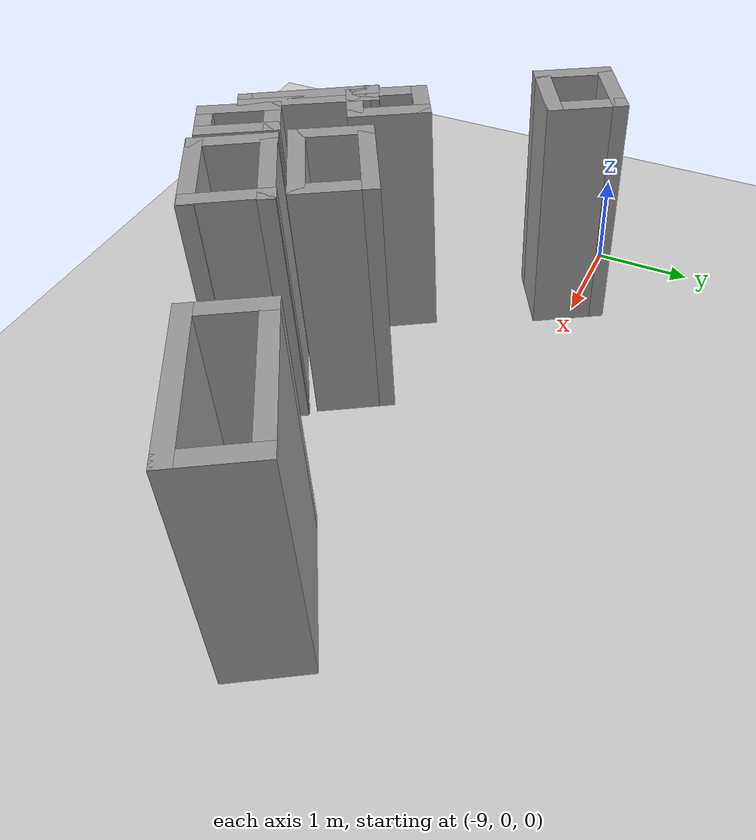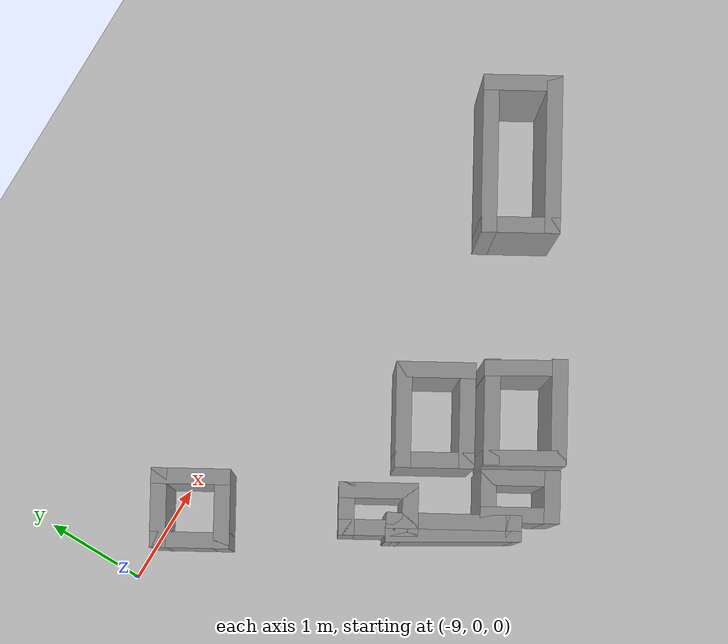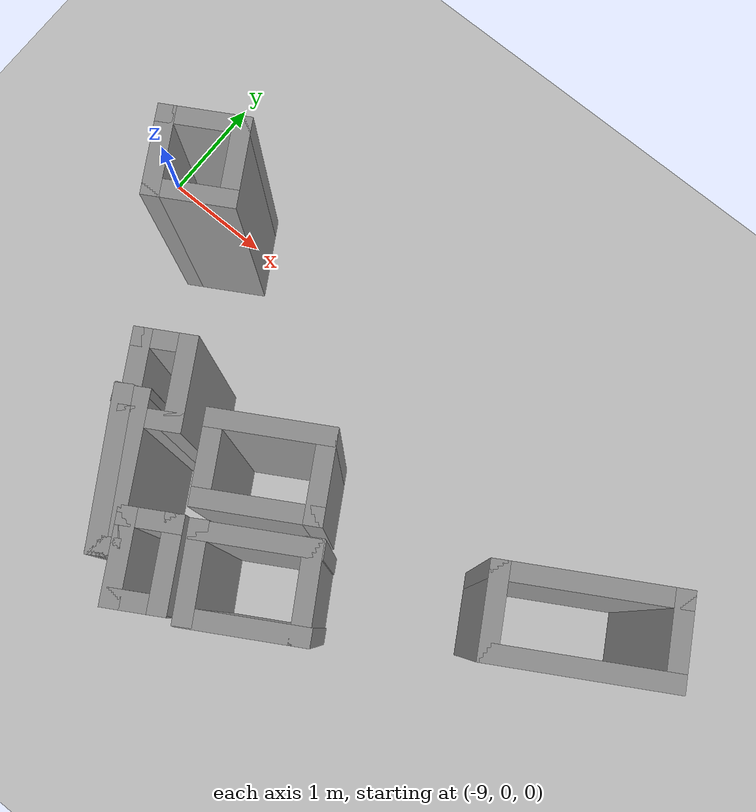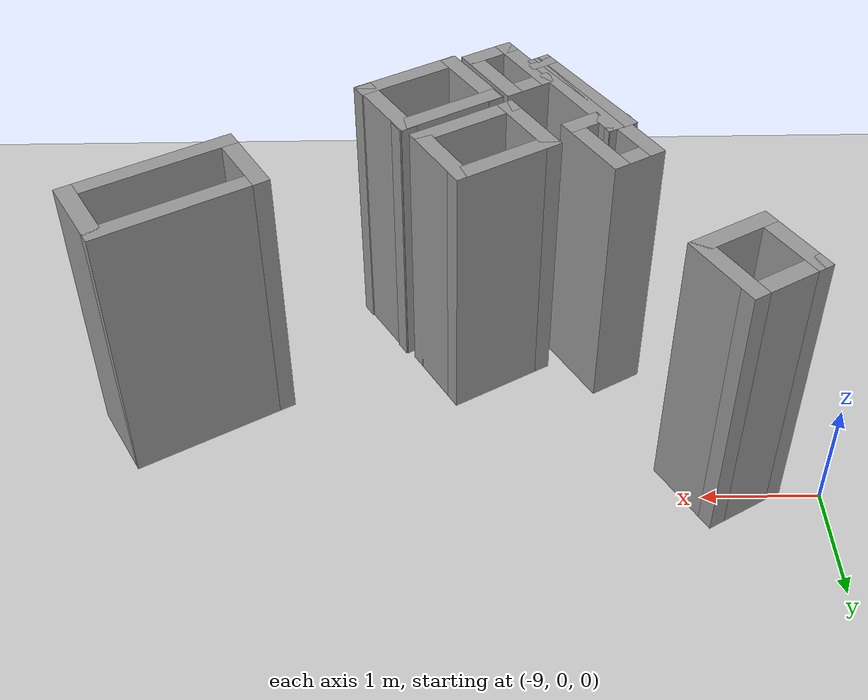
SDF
<sdf version='1.7'>
    <world name='default'>
    <include>
        <uri>model://sun</uri>
    </include>
    <include>
        <uri>model://ground_plane</uri>
    </include>
  <model name='try1'>
    <pose>-4.33347 -1.44575 0 0 -0 0</pose>
    <link name='Wall_17'>
      <collision name='Wall_17_Collision'>
        <geometry>
          <box>
            <size>0.75 0.15 2.5</size>
          </box>
        </geometry>
        <pose>0 0 1.25 0 -0 0</pose>
      </collision>
      <visual name='Wall_17_Visual'>
        <pose>0 0 1.25 0 -0 0</pose>
        <geometry>
          <box>
            <size>0.75 0.15 2.5</size>
          </box>
        </geometry>
        <material>
          <script>
            <uri>file://media/materials/scripts/gazebo.material</uri>
            <name>Gazebo/Grey</name>
          </script>
          <ambient>1 1 1 1</ambient>
        </material>
        <meta>
          <layer>0</layer>
        </meta>
      </visual>
      <pose>-4.08101 1.11796 0 0 -0 -1.0472</pose>
    </link>
    <link name='Wall_18'>
      <collision name='Wall_18_Collision'>
        <geometry>
          <box>
            <size>0.75 0.15 2.5</size>
          </box>
        </geometry>
        <pose>0 0 1.25 0 -0 0</pose>
      </collision>
      <visual name='Wall_18_Visual'>
        <pose>0 0 1.25 0 -0 0</pose>
        <geometry>
          <box>
            <size>0.75 0.15 2.5</size>
          </box>
        </geometry>
        <material>
          <script>
            <uri>file://media/materials/scripts/gazebo.material</uri>
            <name>Gazebo/Grey</name>
          </script>
          <ambient>1 1 1 1</ambient>
        </material>
        <meta>
          <layer>0</layer>
        </meta>
      </visual>
      <pose>-3.67121 1.00815 0 0 -0 0.523599</pose>
    </link>
    <link name='Wall_19'>
      <collision name='Wall_19_Collision'>
        <geometry>
          <box>
            <size>0.75 0.15 2.5</size>
          </box>
        </geometry>
        <pose>0 0 1.25 0 -0 0</pose>
      </collision>
      <visual name='Wall_19_Visual'>
        <pose>0 0 1.25 0 -0 0</pose>
        <geometry>
          <box>
            <size>0.75 0.15 2.5</size>
          </box>
        </geometry>
        <material>
          <script>
            <uri>file://media/materials/scripts/gazebo.material</uri>
            <name>Gazebo/Grey</name>
          </script>
          <ambient>1 1 1 1</ambient>
        </material>
        <meta>
          <layer>0</layer>
        </meta>
      </visual>
      <pose>-3.5614 1.41796 0 0 -0 2.0944</pose>
    </link>
    <link name='Wall_20'>
      <collision name='Wall_20_Collision'>
        <geometry>
          <box>
            <size>0.75 0.15 2.5</size>
          </box>
        </geometry>
        <pose>0 0 1.25 0 -0 0</pose>
      </collision>
      <visual name='Wall_20_Visual'>
        <pose>0 0 1.25 0 -0 0</pose>
        <geometry>
          <box>
            <size>0.75 0.15 2.5</size>
          </box>
        </geometry>
        <material>
          <script>
            <uri>file://media/materials/scripts/gazebo.material</uri>
            <name>Gazebo/Grey</name>
          </script>
          <ambient>1 1 1 1</ambient>
        </material>
        <meta>
          <layer>0</layer>
        </meta>
      </visual>
      <pose>-3.9712 1.52776 0 0 -0 -2.61799</pose>
    </link>
    <link name='Wall_34'>
      <collision name='Wall_34_Collision'>
        <geometry>
          <box>
            <size>1 0.15 2.5</size>
          </box>
        </geometry>
        <pose>0 0 1.25 0 -0 0</pose>
      </collision>
      <visual name='Wall_34_Visual'>
        <pose>0 0 1.25 0 -0 0</pose>
        <geometry>
          <box>
            <size>1 0.15 2.5</size>
          </box>
        </geometry>
        <material>
          <script>
            <uri>file://media/materials/scripts/gazebo.material</uri>
            <name>Gazebo/Grey</name>
          </script>
          <ambient>1 1 1 1</ambient>
        </material>
        <meta>
          <layer>0</layer>
        </meta>
      </visual>
      <pose>-1.7247 -0.51149 0 0 -0 0.523599</pose>
    </link>
    <link name='Wall_35'>
      <collision name='Wall_35_Collision'>
        <geometry>
          <box>
            <size>0.75 0.15 2.5</size>
          </box>
        </geometry>
        <pose>0 0 1.25 0 -0 0</pose>
      </collision>
      <visual name='Wall_35_Visual'>
        <pose>0 0 1.25 0 -0 0</pose>
        <geometry>
          <box>
            <size>0.75 0.15 2.5</size>
          </box>
        </geometry>
        <material>
          <script>
            <uri>file://media/materials/scripts/gazebo.material</uri>
            <name>Gazebo/Grey</name>
          </script>
          <ambient>1 1 1 1</ambient>
        </material>
        <meta>
          <layer>0</layer>
        </meta>
      </visual>
      <pose>-1.50664 -0.039183 0 0 -0 2.0944</pose>
    </link>
    <link name='Wall_43'>
      <collision name='Wall_43_Collision'>
        <geometry>
          <box>
            <size>1 0.15 2.5</size>
          </box>
        </geometry>
        <pose>0 0 1.25 0 -0 0</pose>
      </collision>
      <visual name='Wall_43_Visual'>
        <pose>0 0 1.25 0 -0 0</pose>
        <geometry>
          <box>
            <size>1 0.15 2.5</size>
          </box>
        </geometry>
        <material>
          <script>
            <uri>file://media/materials/scripts/gazebo.material</uri>
            <name>Gazebo/Grey</name>
          </script>
          <ambient>1 1 1 1</ambient>
        </material>
        <meta>
          <layer>0</layer>
        </meta>
      </visual>
      <pose>-2.0247 0.008125 0 0 -0 -2.61799</pose>
    </link>
    <link name='Wall_44'>
      <collision name='Wall_44_Collision'>
        <geometry>
          <box>
            <size>0.75 0.15 2.5</size>
          </box>
        </geometry>
        <pose>0 0 1.25 0 -0 0</pose>
      </collision>
      <visual name='Wall_44_Visual'>
        <pose>0 0 1.25 0 -0 0</pose>
        <geometry>
          <box>
            <size>0.75 0.15 2.5</size>
          </box>
        </geometry>
        <material>
          <script>
            <uri>file://media/materials/scripts/gazebo.material</uri>
            <name>Gazebo/Grey</name>
          </script>
          <ambient>1 1 1 1</ambient>
        </material>
        <meta>
          <layer>0</layer>
        </meta>
      </visual>
      <pose>-2.24277 -0.464183 0 0 -0 -1.0472</pose>
    </link>
    <link name='Wall_46'>
      <collision name='Wall_46_Collision'>
        <geometry>
          <box>
            <size>0.75 0.15 2.5</size>
          </box>
        </geometry>
        <pose>0 0 1.25 0 -0 0</pose>
      </collision>
      <visual name='Wall_46_Visual'>
        <pose>0 0 1.25 0 -0 0</pose>
        <geometry>
          <box>
            <size>0.75 0.15 2.5</size>
          </box>
        </geometry>
        <material>
          <script>
            <uri>file://media/materials/scripts/gazebo.material</uri>
            <name>Gazebo/Grey</name>
          </script>
          <ambient>1 1 1 1</ambient>
        </material>
        <meta>
          <layer>0</layer>
        </meta>
      </visual>
      <pose>-2.75888 -0.163719 0 0 -0 2.0944</pose>
    </link>
    <link name='Wall_47'>
      <collision name='Wall_47_Collision'>
        <geometry>
          <box>
            <size>0.5 0.15 2.5</size>
          </box>
        </geometry>
        <pose>0 0 1.25 0 -0 0</pose>
      </collision>
      <visual name='Wall_47_Visual'>
        <pose>0 0 1.25 0 -0 0</pose>
        <geometry>
          <box>
            <size>0.5 0.15 2.5</size>
          </box>
        </geometry>
        <material>
          <script>
            <uri>file://media/materials/scripts/gazebo.material</uri>
            <name>Gazebo/Grey</name>
          </script>
          <ambient>1 1 1 1</ambient>
        </material>
        <meta>
          <layer>0</layer>
        </meta>
      </visual>
      <pose>-3.06044 0.008588 0 0 -0 -2.61799</pose>
    </link>
    <link name='Wall_58'>
      <collision name='Wall_58_Collision'>
        <geometry>
          <box>
            <size>0.279 0.15 2.5</size>
          </box>
        </geometry>
        <pose>0 0 1.25 0 -0 0</pose>
      </collision>
      <visual name='Wall_58_Visual'>
        <pose>0 0 1.25 0 -0 0</pose>
        <geometry>
          <box>
            <size>0.279 0.15 2.5</size>
          </box>
        </geometry>
        <material>
          <script>
            <uri>file://media/materials/scripts/gazebo.material</uri>
            <name>Gazebo/Grey</name>
          </script>
          <ambient>1 1 1 1</ambient>
        </material>
        <meta>
          <layer>0</layer>
        </meta>
      </visual>
      <pose>-2.98275 -0.459481 0 0 -0 -2.68176</pose>
    </link>
    <link name='Wall_59'>
      <collision name='Wall_59_Collision'>
        <geometry>
          <box>
            <size>1.28439 0.15 2.5</size>
          </box>
        </geometry>
        <pose>0 0 1.25 0 -0 0</pose>
      </collision>
      <visual name='Wall_59_Visual'>
        <pose>0 0 1.25 0 -0 0</pose>
        <geometry>
          <box>
            <size>1.28439 0.15 2.5</size>
          </box>
        </geometry>
        <material>
          <script>
            <uri>file://media/materials/scripts/gazebo.material</uri>
            <name>Gazebo/Grey</name>
          </script>
          <ambient>1 1 1 1</ambient>
        </material>
        <meta>
          <layer>0</layer>
        </meta>
      </visual>
      <pose>-2.74606 -0.972854 0 0 -0 -1.02487</pose>
    </link>
    <link name='Wall_60'>
      <collision name='Wall_60_Collision'>
        <geometry>
          <box>
            <size>0.25 0.15 2.5</size>
          </box>
        </geometry>
        <pose>0 0 1.25 0 -0 0</pose>
      </collision>
      <visual name='Wall_60_Visual'>
        <pose>0 0 1.25 0 -0 0</pose>
        <geometry>
          <box>
            <size>0.25 0.15 2.5</size>
          </box>
        </geometry>
        <material>
          <script>
            <uri>file://media/materials/scripts/gazebo.material</uri>
            <name>Gazebo/Grey</name>
          </script>
          <ambient>1 1 1 1</ambient>
        </material>
        <meta>
          <layer>0</layer>
        </meta>
      </visual>
      <pose>-2.40826 -1.4326 0 0 -0 0.523599</pose>
    </link>
    <link name='Wall_61'>
      <collision name='Wall_61_Collision'>
        <geometry>
          <box>
            <size>1.27589 0.15 2.5</size>
          </box>
        </geometry>
        <pose>0 0 1.25 0 -0 0</pose>
      </collision>
      <visual name='Wall_61_Visual'>
        <pose>0 0 1.25 0 -0 0</pose>
        <geometry>
          <box>
            <size>1.27589 0.15 2.5</size>
          </box>
        </geometry>
        <material>
          <script>
            <uri>file://media/materials/scripts/gazebo.material</uri>
            <name>Gazebo/Grey</name>
          </script>
          <ambient>1 1 1 1</ambient>
        </material>
        <meta>
          <layer>0</layer>
        </meta>
      </visual>
      <pose>-2.64496 -0.919229 0 0 -0 2.09137</pose>
    </link>
    <link name='Wall_64'>
      <collision name='Wall_64_Collision'>
        <geometry>
          <box>
            <size>0.75 0.15 2.5</size>
          </box>
        </geometry>
        <pose>0 0 1.25 0 -0 0</pose>
      </collision>
      <visual name='Wall_64_Visual'>
        <pose>0 0 1.25 0 -0 0</pose>
        <geometry>
          <box>
            <size>0.75 0.15 2.5</size>
          </box>
        </geometry>
        <material>
          <script>
            <uri>file://media/materials/scripts/gazebo.material</uri>
            <name>Gazebo/Grey</name>
          </script>
          <ambient>1 1 1 1</ambient>
        </material>
        <meta>
          <layer>0</layer>
        </meta>
      </visual>
      <pose>-3.06199 -0.33872 0 0 -0 -1.0472</pose>
    </link>
    <link name='Wall_65'>
      <collision name='Wall_65_Collision'>
        <geometry>
          <box>
            <size>0.5 0.15 2.5</size>
          </box>
        </geometry>
        <pose>0 0 1.25 0 -0 0</pose>
      </collision>
      <visual name='Wall_65_Visual'>
        <pose>0 0 1.25 0 -0 0</pose>
        <geometry>
          <box>
            <size>0.5 0.15 2.5</size>
          </box>
        </geometry>
        <material>
          <script>
            <uri>file://media/materials/scripts/gazebo.material</uri>
            <name>Gazebo/Grey</name>
          </script>
          <ambient>1 1 1 1</ambient>
        </material>
        <meta>
          <layer>0</layer>
        </meta>
      </visual>
      <pose>-2.76044 -0.511027 0 0 -0 0.523599</pose>
    </link>
    <link name='Wall_67'>
      <collision name='Wall_67_Collision'>
        <geometry>
          <box>
            <size>0.75 0.15 2.5</size>
          </box>
        </geometry>
        <pose>0 0 1.25 0 -0 0</pose>
      </collision>
      <visual name='Wall_67_Visual'>
        <pose>0 0 1.25 0 -0 0</pose>
        <geometry>
          <box>
            <size>0.75 0.15 2.5</size>
          </box>
        </geometry>
        <material>
          <script>
            <uri>file://media/materials/scripts/gazebo.material</uri>
            <name>Gazebo/Grey</name>
          </script>
          <ambient>1 1 1 1</ambient>
        </material>
        <meta>
          <layer>0</layer>
        </meta>
      </visual>
      <pose>-2.27026 -1.41796 0 0 -0 2.0944</pose>
    </link>
    <link name='Wall_68'>
      <collision name='Wall_68_Collision'>
        <geometry>
          <box>
            <size>0.5 0.15 2.5</size>
          </box>
        </geometry>
        <pose>0 0 1.25 0 -0 0</pose>
      </collision>
      <visual name='Wall_68_Visual'>
        <pose>0 0 1.25 0 -0 0</pose>
        <geometry>
          <box>
            <size>0.5 0.15 2.5</size>
          </box>
        </geometry>
        <material>
          <script>
            <uri>file://media/materials/scripts/gazebo.material</uri>
            <name>Gazebo/Grey</name>
          </script>
          <ambient>1 1 1 1</ambient>
        </material>
        <meta>
          <layer>0</layer>
        </meta>
      </visual>
      <pose>-2.26871 -1.07065 0 0 -0 0.523599</pose>
    </link>
    <link name='Wall_69'>
      <collision name='Wall_69_Collision'>
        <geometry>
          <box>
            <size>0.75 0.15 2.5</size>
          </box>
        </geometry>
        <pose>0 0 1.25 0 -0 0</pose>
      </collision>
      <visual name='Wall_69_Visual'>
        <pose>0 0 1.25 0 -0 0</pose>
        <geometry>
          <box>
            <size>0.75 0.15 2.5</size>
          </box>
        </geometry>
        <material>
          <script>
            <uri>file://media/materials/scripts/gazebo.material</uri>
            <name>Gazebo/Grey</name>
          </script>
          <ambient>1 1 1 1</ambient>
        </material>
        <meta>
          <layer>0</layer>
        </meta>
      </visual>
      <pose>-1.96715 -1.24296 0 0 -0 -1.0472</pose>
    </link>
    <link name='Wall_70'>
      <collision name='Wall_70_Collision'>
        <geometry>
          <box>
            <size>0.5 0.15 2.5</size>
          </box>
        </geometry>
        <pose>0 0 1.25 0 -0 0</pose>
      </collision>
      <visual name='Wall_70_Visual'>
        <pose>0 0 1.25 0 -0 0</pose>
        <geometry>
          <box>
            <size>0.5 0.15 2.5</size>
          </box>
        </geometry>
        <material>
          <script>
            <uri>file://media/materials/scripts/gazebo.material</uri>
            <name>Gazebo/Grey</name>
          </script>
          <ambient>1 1 1 1</ambient>
        </material>
        <meta>
          <layer>0</layer>
        </meta>
      </visual>
      <pose>-1.96871 -1.59026 0 0 -0 -2.61799</pose>
    </link>
    <link name='Wall_82'>
      <collision name='Wall_82_Collision'>
        <geometry>
          <box>
            <size>1 0.15 2.5</size>
          </box>
        </geometry>
        <pose>0 0 1.25 0 -0 0</pose>
      </collision>
      <visual name='Wall_82_Visual'>
        <pose>0 0 1.25 0 -0 0</pose>
        <geometry>
          <box>
            <size>1 0.15 2.5</size>
          </box>
        </geometry>
        <material>
          <script>
            <uri>file://media/materials/scripts/gazebo.material</uri>
            <name>Gazebo/Grey</name>
          </script>
          <ambient>1 1 1 1</ambient>
        </material>
        <meta>
          <layer>0</layer>
        </meta>
      </visual>
      <pose>-1.57284 -0.691011 0 0 -0 -2.61799</pose>
    </link>
    <link name='Wall_83'>
      <collision name='Wall_83_Collision'>
        <geometry>
          <box>
            <size>0.784709 0.15 2.5</size>
          </box>
        </geometry>
        <pose>0 0 1.25 0 -0 0</pose>
      </collision>
      <visual name='Wall_83_Visual'>
        <pose>0 0 1.25 0 -0 0</pose>
        <geometry>
          <box>
            <size>0.784709 0.15 2.5</size>
          </box>
        </geometry>
        <material>
          <script>
            <uri>file://media/materials/scripts/gazebo.material</uri>
            <name>Gazebo/Grey</name>
          </script>
          <ambient>1 1 1 1</ambient>
        </material>
        <meta>
          <layer>0</layer>
        </meta>
      </visual>
      <pose>-1.7909 -1.176 0 0 -0 -1.03257</pose>
    </link>
    <link name='Wall_84'>
      <collision name='Wall_84_Collision'>
        <geometry>
          <box>
            <size>1 0.15 2.5</size>
          </box>
        </geometry>
        <pose>0 0 1.25 0 -0 0</pose>
      </collision>
      <visual name='Wall_84_Visual'>
        <pose>0 0 1.25 0 -0 0</pose>
        <geometry>
          <box>
            <size>1 0.15 2.5</size>
          </box>
        </geometry>
        <material>
          <script>
            <uri>file://media/materials/scripts/gazebo.material</uri>
            <name>Gazebo/Grey</name>
          </script>
          <ambient>1 1 1 1</ambient>
        </material>
        <meta>
          <layer>0</layer>
        </meta>
      </visual>
      <pose>-1.24748 -1.23598 0 0 -0 0.523599</pose>
    </link>
    <link name='Wall_85'>
      <collision name='Wall_85_Collision'>
        <geometry>
          <box>
            <size>0.784709 0.15 2.5</size>
          </box>
        </geometry>
        <pose>0 0 1.25 0 -0 0</pose>
      </collision>
      <visual name='Wall_85_Visual'>
        <pose>0 0 1.25 0 -0 0</pose>
        <geometry>
          <box>
            <size>0.784709 0.15 2.5</size>
          </box>
        </geometry>
        <material>
          <script>
            <uri>file://media/materials/scripts/gazebo.material</uri>
            <name>Gazebo/Grey</name>
          </script>
          <ambient>1 1 1 1</ambient>
        </material>
        <meta>
          <layer>0</layer>
        </meta>
      </visual>
      <pose>-1.05478 -0.750998 0 0 -0 2.10902</pose>
    </link>
    <link name='Wall_87'>
      <collision name='Wall_87_Collision'>
        <geometry>
          <box>
            <size>0.75 0.15 2.5</size>
          </box>
        </geometry>
        <pose>0 0 1.25 0 -0 0</pose>
      </collision>
      <visual name='Wall_87_Visual'>
        <pose>0 0 1.25 0 -0 0</pose>
        <geometry>
          <box>
            <size>0.75 0.15 2.5</size>
          </box>
        </geometry>
        <material>
          <script>
            <uri>file://media/materials/scripts/gazebo.material</uri>
            <name>Gazebo/Grey</name>
          </script>
          <ambient>1 1 1 1</ambient>
        </material>
        <meta>
          <layer>0</layer>
        </meta>
      </visual>
      <pose>0.079004 -0.010832 0 0 -0 -1.0472</pose>
    </link>
    <link name='Wall_88'>
      <collision name='Wall_88_Collision'>
        <geometry>
          <box>
            <size>1.5 0.15 2.5</size>
          </box>
        </geometry>
        <pose>0 0 1.25 0 -0 0</pose>
      </collision>
      <visual name='Wall_88_Visual'>
        <pose>0 0 1.25 0 -0 0</pose>
        <geometry>
          <box>
            <size>1.5 0.15 2.5</size>
          </box>
        </geometry>
        <material>
          <script>
            <uri>file://media/materials/scripts/gazebo.material</uri>
            <name>Gazebo/Grey</name>
          </script>
          <ambient>1 1 1 1</ambient>
        </material>
        <meta>
          <layer>0</layer>
        </meta>
      </visual>
      <pose>0.813571 0.066861 0 0 -0 0.523599</pose>
    </link>
    <link name='Wall_89'>
      <collision name='Wall_89_Collision'>
        <geometry>
          <box>
            <size>0.75 0.15 2.5</size>
          </box>
        </geometry>
        <pose>0 0 1.25 0 -0 0</pose>
      </collision>
      <visual name='Wall_89_Visual'>
        <pose>0 0 1.25 0 -0 0</pose>
        <geometry>
          <box>
            <size>0.75 0.15 2.5</size>
          </box>
        </geometry>
        <material>
          <script>
            <uri>file://media/materials/scripts/gazebo.material</uri>
            <name>Gazebo/Grey</name>
          </script>
          <ambient>1 1 1 1</ambient>
        </material>
        <meta>
          <layer>0</layer>
        </meta>
      </visual>
      <pose>1.24814 0.664168 0 0 -0 2.0944</pose>
    </link>
    <link name='Wall_90'>
      <collision name='Wall_90_Collision'>
        <geometry>
          <box>
            <size>1.5 0.15 2.5</size>
          </box>
        </geometry>
        <pose>0 0 1.25 0 -0 0</pose>
      </collision>
      <visual name='Wall_90_Visual'>
        <pose>0 0 1.25 0 -0 0</pose>
        <geometry>
          <box>
            <size>1.5 0.15 2.5</size>
          </box>
        </geometry>
        <material>
          <script>
            <uri>file://media/materials/scripts/gazebo.material</uri>
            <name>Gazebo/Grey</name>
          </script>
          <ambient>1 1 1 1</ambient>
        </material>
        <meta>
          <layer>0</layer>
        </meta>
      </visual>
      <pose>0.513571 0.586476 0 0 -0 -2.61799</pose>
    </link>
    <static>1</static>
  </model>
  </world>
</sdf>
